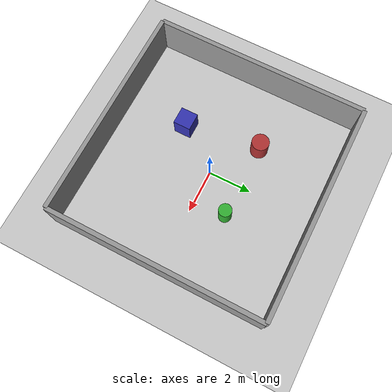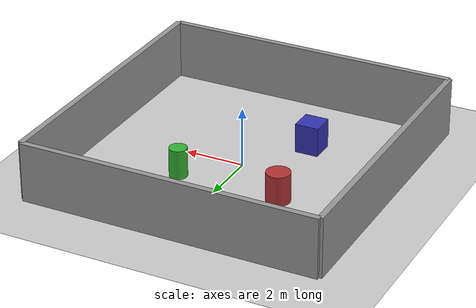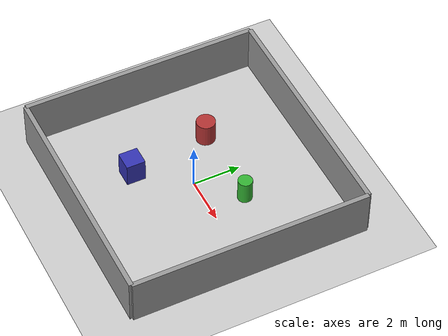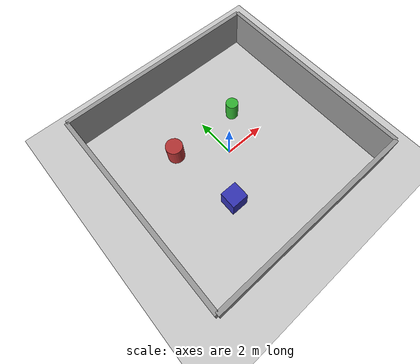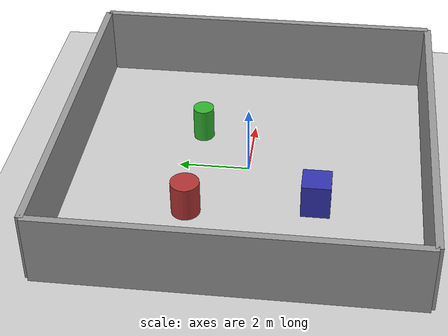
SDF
<?xml version="1.0" ?>
<sdf version="1.8">
  <world name="rover_world">
    <physics name="1ms" type="ignored">
      <max_step_size>0.001</max_step_size>
      <real_time_factor>1.0</real_time_factor>
    </physics>
    <plugin filename="gz-sim-physics-system" name="gz::sim::systems::Physics"/>
    <plugin filename="gz-sim-user-commands-system" name="gz::sim::systems::UserCommands"/>
    <plugin filename="gz-sim-scene-broadcaster-system" name="gz::sim::systems::SceneBroadcaster"/>

    <!-- Light Source -->
    <light type="directional" name="sun">
      <cast_shadows>true</cast_shadows>
      <pose>0 0 10 0 0 0</pose>
      <diffuse>0.8 0.8 0.8 1</diffuse>
      <specular>0.2 0.2 0.2 1</specular>
      <direction>-0.5 0.1 -0.9</direction>
    </light>

    <!-- Ground Plane -->
    <model name="ground_plane">
      <static>true</static>
      <link name="link">
        <collision name="collision">
          <geometry>
            <plane>
              <normal>0 0 1</normal>
              <size>100 100</size>
            </plane>
          </geometry>
        </collision>
        <visual name="visual">
          <geometry>
            <plane>
              <normal>0 0 1</normal>
              <size>100 100</size>
            </plane>
          </geometry>
          <material>
            <ambient>0.8 0.8 0.8 1</ambient>
            <diffuse>0.8 0.8 0.8 1</diffuse>
            <specular>0.8 0.8 0.8 1</specular>
          </material>
        </visual>
      </link>
    </model>

    <!-- Enclosed Room / Walls for SLAM -->
    <!-- North Wall -->
    <model name="wall_north">
      <static>true</static>
      <pose>0 5 1 0 0 0</pose>
      <link name="link">
        <collision name="collision">
          <geometry><box><size>10 0.2 2</size></box></geometry>
        </collision>
        <visual name="visual">
          <geometry><box><size>10 0.2 2</size></box></geometry>
          <material><ambient>0.6 0.6 0.6 1</ambient></material>
        </visual>
      </link>
    </model>

    <!-- South Wall -->
    <model name="wall_south">
      <static>true</static>
      <pose>0 -5 1 0 0 0</pose>
      <link name="link">
        <collision name="collision">
          <geometry><box><size>10 0.2 2</size></box></geometry>
        </collision>
        <visual name="visual">
          <geometry><box><size>10 0.2 2</size></box></geometry>
          <material><ambient>0.6 0.6 0.6 1</ambient></material>
        </visual>
      </link>
    </model>

    <!-- East Wall -->
    <model name="wall_east">
      <static>true</static>
      <pose>5 0 1 0 0 0</pose>
      <link name="link">
        <collision name="collision">
          <geometry><box><size>0.2 10 2</size></box></geometry>
        </collision>
        <visual name="visual">
          <geometry><box><size>0.2 10 2</size></box></geometry>
          <material><ambient>0.6 0.6 0.6 1</ambient></material>
        </visual>
      </link>
    </model>

    <!-- West Wall -->
    <model name="wall_west">
      <static>true</static>
      <pose>-5 0 1 0 0 0</pose>
      <link name="link">
        <collision name="collision">
          <geometry><box><size>0.2 10 2</size></box></geometry>
        </collision>
        <visual name="visual">
          <geometry><box><size>0.2 10 2</size></box></geometry>
          <material><ambient>0.6 0.6 0.6 1</ambient></material>
        </visual>
      </link>
    </model>

    <!-- Internal Cylinders / Obstacles for SLAM Features -->
    <model name="pillar_1">
      <static>true</static>
      <pose>1.5 1.5 0.5 0 0 0</pose>
      <link name="link">
        <collision name="collision">
          <geometry><cylinder><radius>0.3</radius><length>1.0</length></cylinder></geometry>
        </collision>
        <visual name="visual">
          <geometry><cylinder><radius>0.3</radius><length>1.0</length></cylinder></geometry>
          <material><ambient>0.2 0.7 0.2 1</ambient></material>
        </visual>
      </link>
    </model>

    <model name="pillar_2">
      <static>true</static>
      <pose>-2.0 1.5 0.5 0 0 0</pose>
      <link name="link">
        <collision name="collision">
          <geometry><cylinder><radius>0.4</radius><length>1.0</length></cylinder></geometry>
        </collision>
        <visual name="visual">
          <geometry><cylinder><radius>0.4</radius><length>1.0</length></cylinder></geometry>
          <material><ambient>0.7 0.2 0.2 1</ambient></material>
        </visual>
      </link>
    </model>

    <model name="pillar_3">
      <static>true</static>
      <pose>-1.5 -2.0 0.5 0 0 0</pose>
      <link name="link">
        <collision name="collision">
          <geometry><box><size>0.8 0.8 1.0</size></box></geometry>
        </collision>
        <visual name="visual">
          <geometry><box><size>0.8 0.8 1.0</size></box></geometry>
          <material><ambient>0.2 0.2 0.7 1</ambient></material>
        </visual>
      </link>
    </model>
  </world>
</sdf>
